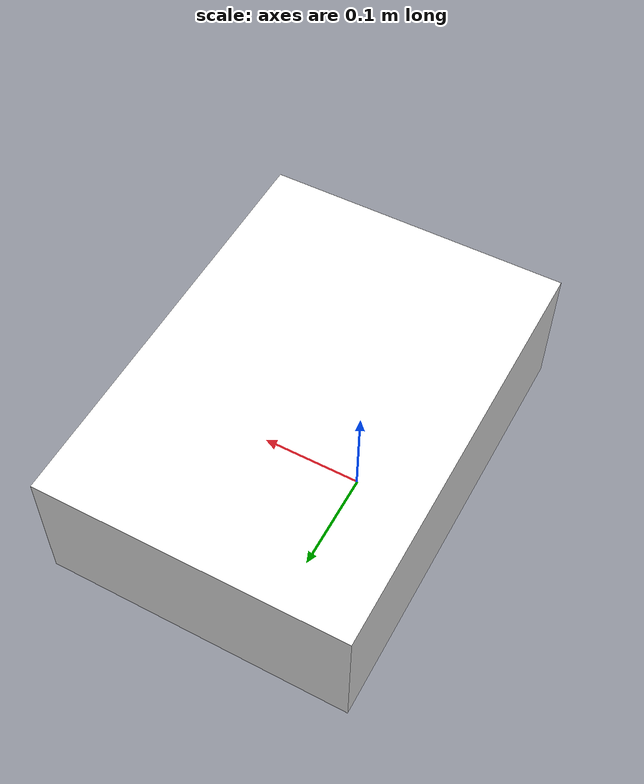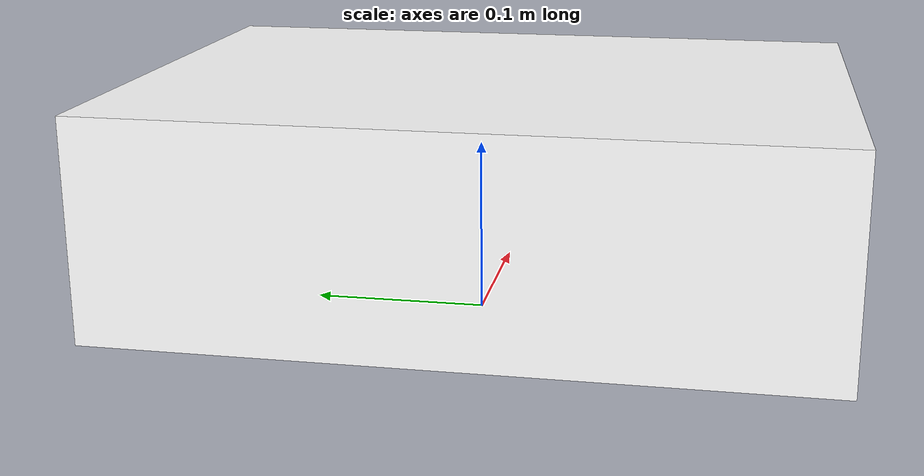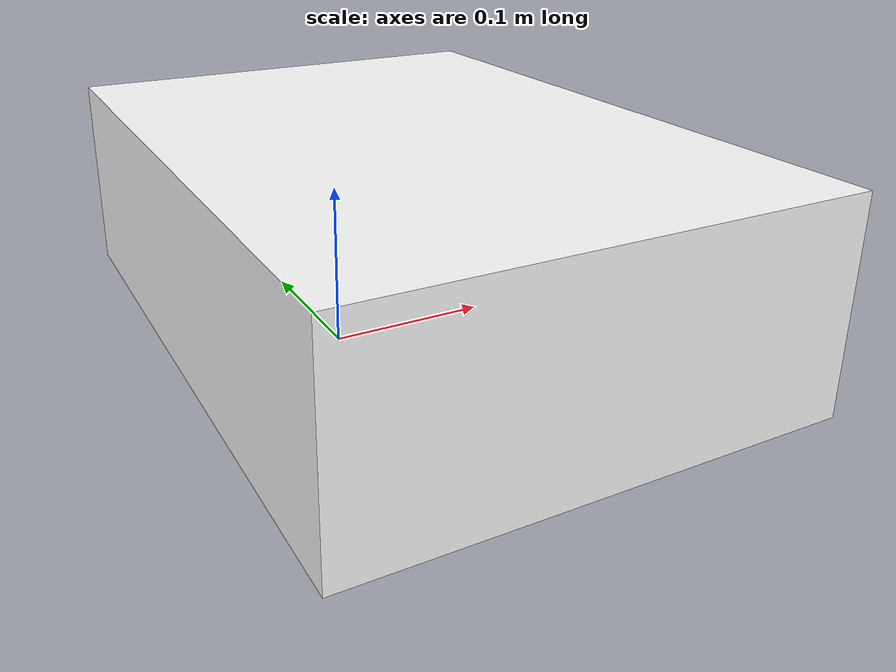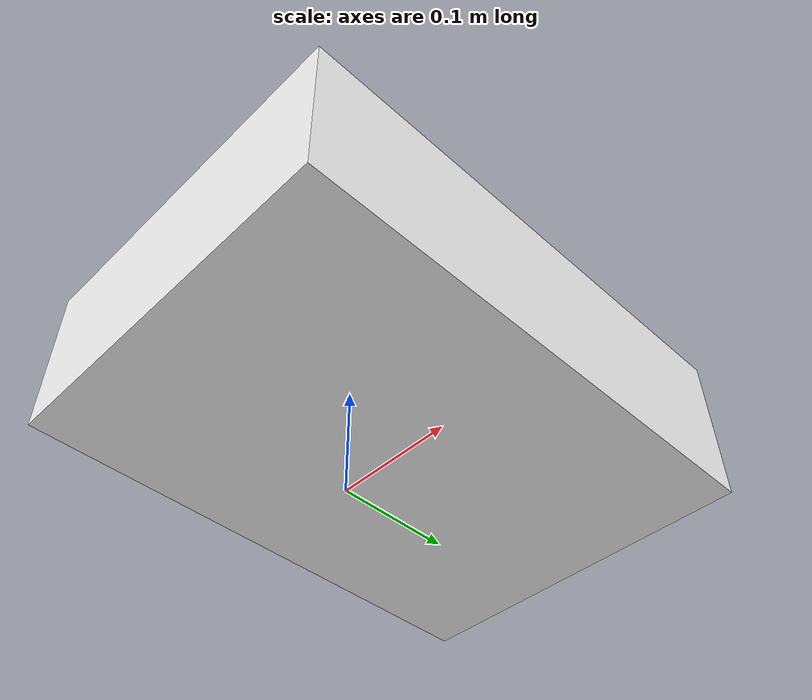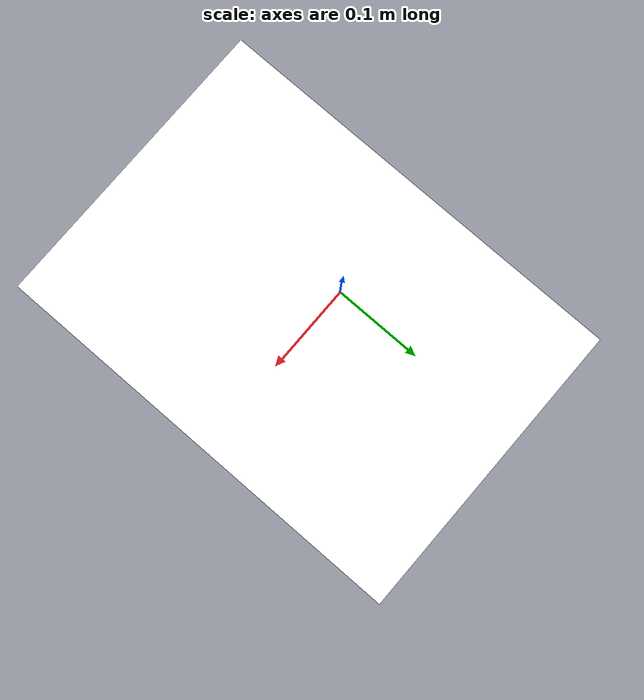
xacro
<?xml version="1.0"?>
<robot xmlns:xacro="http://www.ros.org/wiki/xacro">

    <material name="green">
        <color rgba="0 1 0 1" />
    </material>

    <material name="white">
        <color rgba="1 1 1 1" />
    </material>

    <material name="blue">
        <color rgba="0.2 0.2 1 1" />
    </material>

    <material name="black">
        <color rgba="0 0 0 1" />
    </material>

    <link name="base_link">

    </link>

    <joint name="chssis_joint" type="fixed">
        <parent link="base_link"/>
        <child link="chassis"/>
        <origin xyz="-0.1 0 0"/>
    </joint>

    <link name="chassis">
        <visual>
            <origin xyz="0.15 0 0.065"/>
            <geometry>
                <box size="0.3 0.42 0.13"/>
            </geometry>
            <material name="white"/>
        </visual>
    </link>

</robot>
